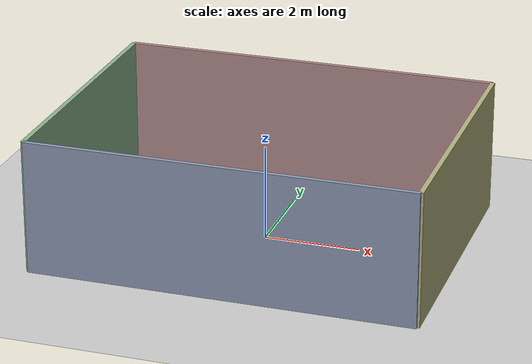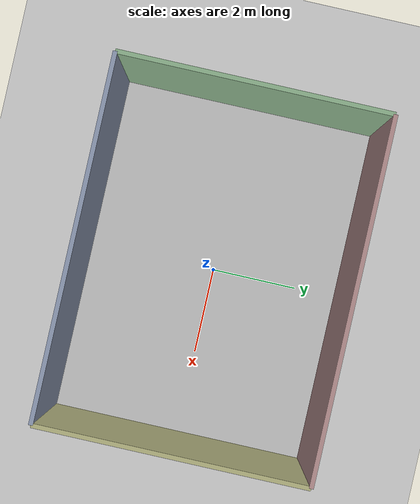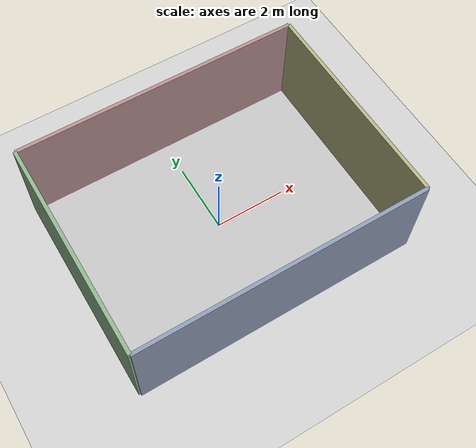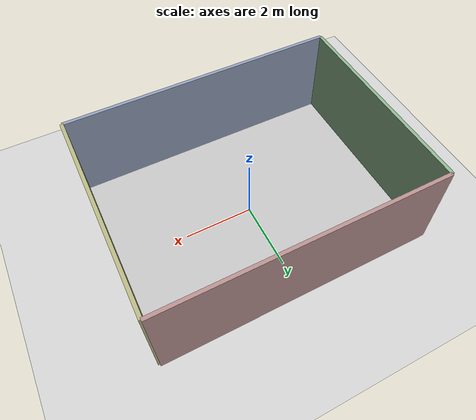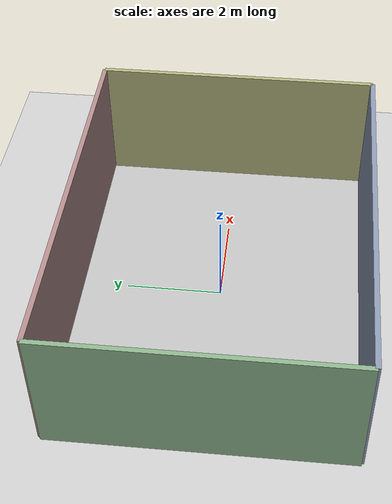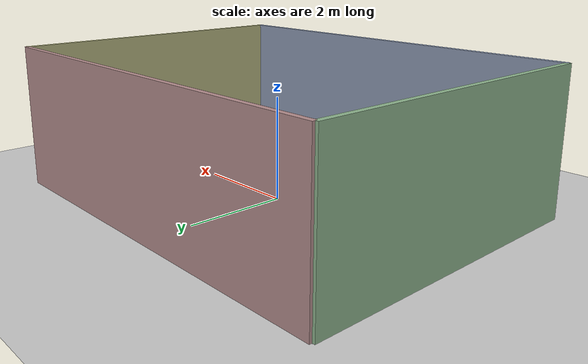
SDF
<?xml version="1.0" ?>
<sdf version="1.7">
  <world name="indoor_lab">
    <include><uri>model://sun</uri></include>
    <include><uri>model://ground_plane</uri></include>
    <gravity>0 0 -9.81</gravity>
    <model name="room">
      <static>true</static>
      <link name="link">
        <collision name="floor"><geometry><box><size>8 6 0.05</size></box></geometry></collision>
        <visual name="floor">
          <geometry><box><size>8 6 0.05</size></box></geometry>
          <material><ambient>0.75 0.75 0.75 1</ambient></material>
        </visual>
        <collision name="wall_s"><pose>0 -3 1.4 0 0 0</pose><geometry><box><size>8 0.1 2.8</size></box></geometry></collision>
        <visual name="wall_s"><pose>0 -3 1.4 0 0 0</pose><geometry><box><size>8 0.1 2.8</size></box></geometry>
          <material><ambient>0.55 0.6 0.7 1</ambient></material></visual>
        <collision name="wall_n"><pose>0 3 1.4 0 0 0</pose><geometry><box><size>8 0.1 2.8</size></box></geometry></collision>
        <visual name="wall_n"><pose>0 3 1.4 0 0 0</pose><geometry><box><size>8 0.1 2.8</size></box></geometry>
          <material><ambient>0.7 0.55 0.55 1</ambient></material></visual>
        <collision name="wall_w"><pose>-4 0 1.4 0 0 0</pose><geometry><box><size>0.1 6 2.8</size></box></geometry></collision>
        <visual name="wall_w"><pose>-4 0 1.4 0 0 0</pose><geometry><box><size>0.1 6 2.8</size></box></geometry>
          <material><ambient>0.55 0.7 0.55 1</ambient></material></visual>
        <collision name="wall_e"><pose>4 0 1.4 0 0 0</pose><geometry><box><size>0.1 6 2.8</size></box></geometry></collision>
        <visual name="wall_e"><pose>4 0 1.4 0 0 0</pose><geometry><box><size>0.1 6 2.8</size></box></geometry>
          <material><ambient>0.7 0.7 0.5 1</ambient></material></visual>
      </link>
    </model>
  </world>
</sdf>
